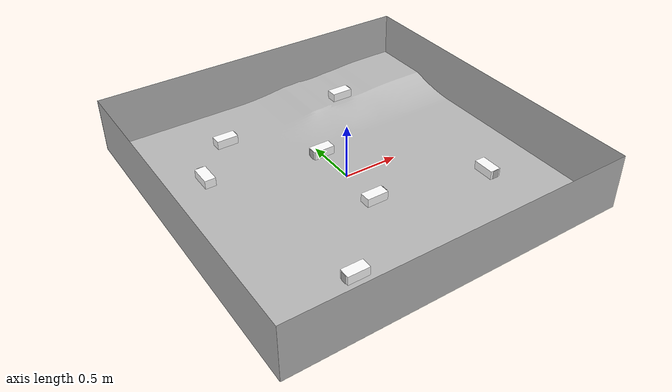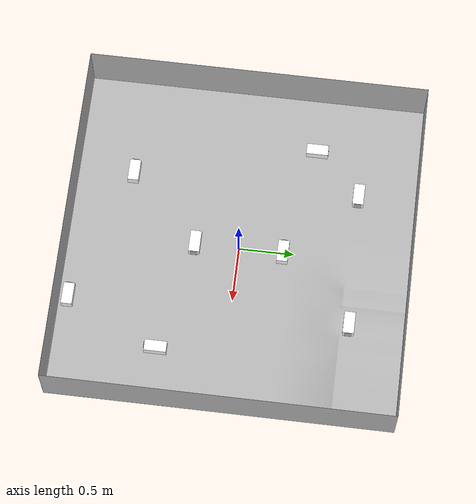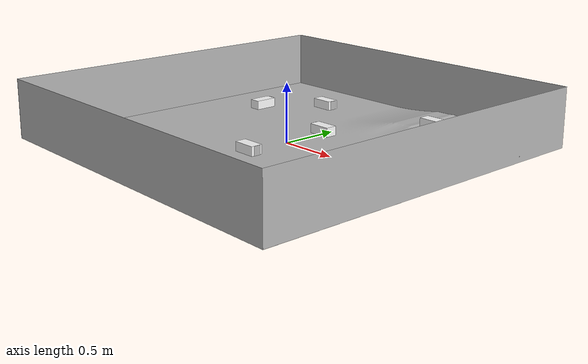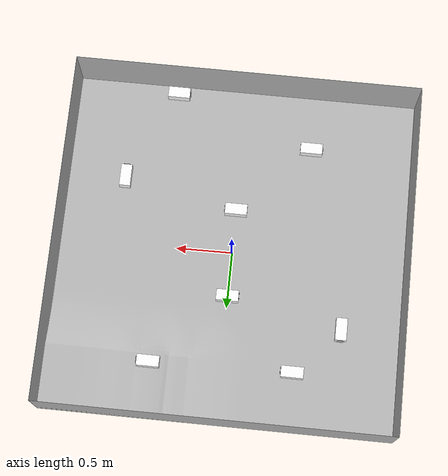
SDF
<sdf version="1.4">
 <world name="default">
  <include><uri>model://full_town</uri></include>
  <include><uri>model://sun</uri></include>
  <scene><sky><time>12</time></sky><shadows>0</shadows></scene>
  <include>
   <uri>model://wall</uri>
   <name>north_wall</name>
   <pose>1.55 0 0.25 0 0 1.57</pose>
   <static>true</static>
  </include>
  <include>
   <uri>model://wall</uri>
   <name>south_wall</name>
   <pose>-1.55 0 0.25 0 0 1.57</pose>
   <static>true</static>
  </include>
  <include>
   <uri>model://wall</uri>
   <name>east_wall</name>
   <pose>0 -1.55 0.25 0 0 0</pose>
   <static>true</static>
  </include>
  <include>
   <uri>model://wall</uri>
   <name>west_wall</name>
   <pose>0 1.55 0.25 0 0 0</pose>
   <static>true</static>
  </include>
  <include><uri>model://car0</uri><static>true</static><pose>-0.631 -1.041 0.04 0.0 0.0 1.57</pose></include>
  <include><uri>model://car1</uri><static>true</static><pose>0.631 -1.467 0.04 0.0 0.0 1.57</pose></include>
  <include><uri>model://car2</uri><static>true</static><pose>1.03 -0.623 0.04 0.0 0.0 3.14</pose></include>
  <include><uri>model://car3</uri><static>true</static><pose>0.631 1.059 0.1 0.0 0.0 4.71</pose></include>
  <include><uri>model://car4</uri><static>true</static><pose>-0.631 1.027 0.04 0.0 0.0 4.71</pose></include>
  <include><uri>model://car5</uri><static>true</static><pose>-1.03 0.607 0.04 0.0 0.0 0.0</pose></include>
  <include><uri>model://car6</uri><static>true</static><pose>0.0 0.4 0.04 0.0 0.0 1.57</pose></include>
  <include><uri>model://car7</uri><static>true</static><pose>0.0 -0.4 0.04 0.0 0.0 -1.57</pose></include>
  <include><uri>model://car_muscle</uri><static>true</static><pose>1.5 1 0.0 0.0 0.0 0.0</pose></include>
  <physics type="ode">
   <max_step_size>0.001</max_step_size>
   <real_time_factor>10.0</real_time_factor>
   <real_time_update_rate>1000.0</real_time_update_rate>
  </physics>
  <plugin name="B1_collision_plugin" filename="libcollision_plugin.so">
   <pubPeriod>2</pubPeriod>
   <pubTopic>B1_Hit</pubTopic>
   <collisionObject1>B1</collisionObject1>
  </plugin>
  <plugin name="R1_collision_plugin" filename="libcollision_plugin.so">
   <pubPeriod>2</pubPeriod>
   <pubTopic>R1_Hit</pubTopic>
   <collisionObject1>R1</collisionObject1>
  </plugin>
 </world>
</sdf>

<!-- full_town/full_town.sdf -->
<sdf version="1.4">
<model name="full_town">
  <static>true</static>
    <link name="link">
      <collision name="collision">
        <pose>0 0 0 0 0 -1.57</pose>
        <geometry>
          <mesh>
            <uri>model://full_town/meshes/Terrain_2.dae</uri>
            <scale>0.50 0.50 0.50</scale>
            <normal>0 0 1</normal>
          </mesh>
        </geometry>
        <surface>
          <friction>
            <ode>
              <mu>100</mu>
              <mu2>100</mu2>
            </ode>
          </friction>
        </surface>
      </collision>
      <visual name="visual">
        <pose>0 0 0 0 0 -1.57</pose>
        <cast_shadows>false</cast_shadows>
        <geometry>
          <mesh>
            <uri>model://full_town/meshes/Terrain_2.dae</uri>
            <scale>0.50 0.50 0.50</scale>
            <normal>0 0 1</normal>
          </mesh>
        </geometry>
        <material>
          <script>
            <uri>file://materials/scripts</uri>
            <uri>file://materials/textures</uri>
            <name>full_town</name>
          </script>
        </material>
      </visual>
    </link>
  </model>
</sdf>

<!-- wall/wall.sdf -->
<sdf version='1.4'>
  <model name="wall">
  <link name='wall'>
    <pose>0 0 0 0 0 0</pose>
    <inertial>
      <inertia>
        <ixx>1e-6</ixx>
        <ixy>0</ixy>
        <ixz>0</ixz>
        <iyy>1e-6</iyy>
        <iyz>0</iyz>
        <izz>1e-6</izz>
      </inertia>
      <mass>1e-6</mass>
    </inertial>
    <collision name='collision'>
      <pose>0 0 0 0 0 0</pose>
      <geometry>
        <box>
          <size>3.1 1e-6 0.5</size>
        </box>
      </geometry>
    </collision>
    <visual name='visual'>
      <geometry>
        <box>
          <size>3.1 1e-6 0.5</size>
        </box>
      </geometry>
      <material>
      <script>
        <uri>file://materials/scripts</uri>
        <uri>file://materials/textures</uri>
        <name>wall</name>
      </script>
      </material>
    </visual>
  </link>
</model>
</sdf>

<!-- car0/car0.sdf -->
<sdf version='1.4'>
  <model name="car0">
  <link name='car_body'>
    <pose>0 0 0 0 0 0</pose>
    <inertial>
      <inertia>
        <ixx>1e6</ixx>
        <ixy>0</ixy>
        <ixz>0</ixz>
        <iyy>1e6</iyy>
        <iyz>0</iyz>
        <izz>1e6</izz>
      </inertia>
      <mass>1e6</mass>
    </inertial>
    <collision name='collision'>
      <pose>0 0 0.04 0 0 0</pose>
      <geometry>
        <box>
          <size>0.1 0.2 0.08</size>
        </box>
      </geometry>
    </collision>
    <visual name='visual'>
      <geometry>
        <box>
          <size>0.1 0.2 0.08</size>
        </box>
      </geometry>
        <material>
          <ambient>0 0 1 1</ambient>
          <diffuse>1 1 1 1</diffuse>
          <specular>0 0.5 0 0</specular>
          <emissive>0 0 0 1</emissive>
        </material>
    </visual>
  </link>
  <link name='plate'>
    <pose>0 0.105 0 0 0 0</pose>
    <inertial>
      <inertia>
        <ixx>1e6</ixx>
        <ixy>0</ixy>
        <ixz>0</ixz>
        <iyy>1e6</iyy>
        <iyz>0</iyz>
        <izz>1e6</izz>
      </inertia>
      <mass>1e6</mass>
    </inertial>
    <collision name='collision'>
      <pose>0 0 -2e6 0 0 0</pose>
      <geometry>
        <box>
          <size>1e-6 1e-6 1e-6</size>
        </box>
      </geometry>
    </collision>
    <visual name='visual'>
      <geometry>
        <box>
          <size>0.06 1e-4 0.08</size>
        </box>
      </geometry>
      <material>
        <script>
          <uri>file://materials/scripts</uri>
          <uri>file://materials/textures</uri>
          <name>car0</name>
        </script>
      </material>
    </visual>
  </link>
</model>
</sdf>

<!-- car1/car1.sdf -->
<sdf version='1.4'>
  <model name="car1">
  <link name='car_body'>
    <pose>0 0 0 0 0 0</pose>
    <inertial>
      <inertia>
        <ixx>1e6</ixx>
        <ixy>0</ixy>
        <ixz>0</ixz>
        <iyy>1e6</iyy>
        <iyz>0</iyz>
        <izz>1e6</izz>
      </inertia>
      <mass>1e6</mass>
    </inertial>
    <collision name='collision'>
      <pose>0 0 0.04 0 0 0</pose>
      <geometry>
        <box>
          <size>0.1 0.2 0.08</size>
        </box>
      </geometry>
    </collision>
    <visual name='visual'>
      <geometry>
        <box>
          <size>0.1 0.2 0.08</size>
        </box>
      </geometry>
        <material>
          <ambient>0 0 1 1</ambient>
          <diffuse>1 1 1 1</diffuse>
          <specular>0 0.5 0 0</specular>
          <emissive>0 0 0 1</emissive>
        </material>
    </visual>
  </link>
  <link name='plate'>
    <pose>0 0.105 0 0 0 0</pose>
    <inertial>
      <inertia>
        <ixx>1e6</ixx>
        <ixy>0</ixy>
        <ixz>0</ixz>
        <iyy>1e6</iyy>
        <iyz>0</iyz>
        <izz>1e6</izz>
      </inertia>
      <mass>1e6</mass>
    </inertial>
    <collision name='collision'>
      <pose>0 0 -2e6 0 0 0</pose>
      <geometry>
        <box>
          <size>1e-6 1e-6 1e-6</size>
        </box>
      </geometry>
    </collision>
    <visual name='visual'>
      <geometry>
        <box>
          <size>0.06 1e-4 0.08</size>
        </box>
      </geometry>
      <material>
        <script>
          <uri>file://materials/scripts</uri>
          <uri>file://materials/textures</uri>
          <name>car1</name>
        </script>
      </material>
    </visual>
  </link>
</model>
</sdf>

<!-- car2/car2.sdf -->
<sdf version='1.4'>
  <model name="car2">
  <link name='car_body'>
    <pose>0 0 0 0 0 0</pose>
    <inertial>
      <inertia>
        <ixx>1e6</ixx>
        <ixy>0</ixy>
        <ixz>0</ixz>
        <iyy>1e6</iyy>
        <iyz>0</iyz>
        <izz>1e6</izz>
      </inertia>
      <mass>1e6</mass>
    </inertial>
    <collision name='collision'>
      <pose>0 0 0.04 0 0 0</pose>
      <geometry>
        <box>
          <size>0.1 0.2 0.08</size>
        </box>
      </geometry>
    </collision>
    <visual name='visual'>
      <geometry>
        <box>
          <size>0.1 0.2 0.08</size>
        </box>
      </geometry>
        <material>
          <ambient>0 0 1 1</ambient>
          <diffuse>1 1 1 1</diffuse>
          <specular>0 0.5 0 0</specular>
          <emissive>0 0 0 1</emissive>
        </material>
    </visual>
  </link>
  <link name='plate'>
    <pose>0 0.105 0 0 0 0</pose>R
    <inertial>
      <inertia>
        <ixx>1e6</ixx>
        <ixy>0</ixy>
        <ixz>0</ixz>
        <iyy>1e6</iyy>
        <iyz>0</iyz>
        <izz>1e6</izz>
      </inertia>
      <mass>1e6</mass>
    </inertial>
    <collision name='collision'>
      <pose>0 0 -2e6 0 0 0</pose>
      <geometry>
        <box>
          <size>1e-6 1e-6 1e-6</size>
        </box>
      </geometry>
    </collision>
    <visual name='visual'>
      <geometry>
        <box>
          <size>0.06 1e-4 0.08</size>
        </box>
      </geometry>
      <material>
        <script>
          <uri>file://materials/scripts</uri>
          <uri>file://materials/textures</uri>
          <name>car2</name>
        </script>
      </material>
    </visual>
  </link>
</model>
</sdf>

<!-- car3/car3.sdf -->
<sdf version='1.4'>
  <model name="car3">
  <link name='car_body'>
    <pose>0 0 0 0 0 0</pose>
    <inertial>
      <inertia>
        <ixx>1e6</ixx>
        <ixy>0</ixy>
        <ixz>0</ixz>
        <iyy>1e6</iyy>
        <iyz>0</iyz>
        <izz>1e6</izz>
      </inertia>
      <mass>1e6</mass>
    </inertial>
    <collision name='collision'>
      <pose>0 0 0.04 0 0 0</pose>
      <geometry>
        <box>
          <size>0.1 0.2 0.08</size>
        </box>
      </geometry>
    </collision>
    <visual name='visual'>
      <geometry>
        <box>
          <size>0.1 0.2 0.08</size>
        </box>
      </geometry>
        <material>
          <ambient>0 0 1 1</ambient>
          <diffuse>1 1 1 1</diffuse>
          <specular>0 0.5 0 0</specular>
          <emissive>0 0 0 1</emissive>
        </material>
    </visual>
  </link>
  <link name='plate'>
    <pose>0 0.105 0 0 0 0</pose>
    <inertial>
      <inertia>
        <ixx>1e6</ixx>
        <ixy>0</ixy>
        <ixz>0</ixz>
        <iyy>1e6</iyy>
        <iyz>0</iyz>
        <izz>1e6</izz>
      </inertia>
      <mass>1e6</mass>
    </inertial>
    <collision name='collision'>
      <pose>0 0 -2e6 0 0 0</pose>
      <geometry>
        <box>
          <size>1e-6 1e-6 1e-6</size>
        </box>
      </geometry>
    </collision>
    <visual name='visual'>
      <geometry>
        <box>
          <size>0.06 1e-4 0.08</size>
        </box>
      </geometry>
      <material>
        <script>
          <uri>file://materials/scripts</uri>
          <uri>file://materials/textures</uri>
          <name>car3</name>
        </script>
      </material>
    </visual>
  </link>
</model>
</sdf>

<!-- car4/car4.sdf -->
<sdf version='1.4'>
  <model name="car4">
  <link name='car_body'>
    <pose>0 0 0 0 0 0</pose>
    <inertial>
      <inertia>
        <ixx>1e6</ixx>
        <ixy>0</ixy>
        <ixz>0</ixz>
        <iyy>1e6</iyy>
        <iyz>0</iyz>
        <izz>1e6</izz>
      </inertia>
      <mass>1e6</mass>
    </inertial>
    <collision name='collision'>
      <pose>0 0 0.04 0 0 0</pose>
      <geometry>
        <box>
          <size>0.1 0.2 0.08</size>
        </box>
      </geometry>
    </collision>
    <visual name='visual'>
      <geometry>
        <box>
          <size>0.1 0.2 0.08</size>
        </box>
      </geometry>
        <material>
          <ambient>0 0 1 1</ambient>
          <diffuse>1 1 1 1</diffuse>
          <specular>0 0.5 0 0</specular>
          <emissive>0 0 0 1</emissive>
        </material>
    </visual>
  </link>
  <link name='plate'>
    <pose>0 0.105 0 0 0 0</pose>
    <inertial>
      <inertia>
        <ixx>1e6</ixx>
        <ixy>0</ixy>
        <ixz>0</ixz>
        <iyy>1e6</iyy>
        <iyz>0</iyz>
        <izz>1e6</izz>
      </inertia>
      <mass>1e6</mass>
    </inertial>
    <collision name='collision'>
      <pose>0 0 -2e6 0 0 0</pose>
      <geometry>
        <box>
          <size>1e-6 1e-6 1e-6</size>
        </box>
      </geometry>
    </collision>
    <visual name='visual'>
      <geometry>
        <box>
          <size>0.06 1e-4 0.08</size>
        </box>
      </geometry>
      <material>
        <script>
          <uri>file://materials/scripts</uri>
          <uri>file://materials/textures</uri>
          <name>car4</name>
        </script>
      </material>
    </visual>
  </link>
</model>
</sdf>

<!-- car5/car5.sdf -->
<sdf version='1.4'>
  <model name="car5">
  <link name='car_body'>
    <pose>0 0 0 0 0 0</pose>
    <inertial>
      <inertia>
        <ixx>1e6</ixx>
        <ixy>0</ixy>
        <ixz>0</ixz>
        <iyy>1e6</iyy>
        <iyz>0</iyz>
        <izz>1e6</izz>
      </inertia>
      <mass>1e6</mass>
    </inertial>
    <collision name='collision'>
      <pose>0 0 0.04 0 0 0</pose>
      <geometry>
        <box>
          <size>0.1 0.2 0.08</size>
        </box>
      </geometry>
    </collision>
    <visual name='visual'>
      <geometry>
        <box>
          <size>0.1 0.2 0.08</size>
        </box>
      </geometry>
        <material>
          <ambient>0 0 1 1</ambient>
          <diffuse>1 1 1 1</diffuse>
          <specular>0 0.5 0 0</specular>
          <emissive>0 0 0 1</emissive>
        </material>
    </visual>
  </link>
  <link name='plate'>
    <pose>0 0.105 0 0 0 0</pose>
    <inertial>
      <inertia>
        <ixx>1e6</ixx>
        <ixy>0</ixy>
        <ixz>0</ixz>
        <iyy>1e6</iyy>
        <iyz>0</iyz>
        <izz>1e6</izz>
      </inertia>
      <mass>1e6</mass>
    </inertial>
    <collision name='collision'>
      <pose>0 0 -2e6 0 0 0</pose>
      <geometry>
        <box>
          <size>1e-6 1e-6 1e-6</size>
        </box>
      </geometry>
    </collision>
    <visual name='visual'>
      <geometry>
        <box>
          <size>0.06 1e-4 0.08</size>
        </box>
      </geometry>
      <material>
        <script>
          <uri>file://materials/scripts</uri>
          <uri>file://materials/textures</uri>
          <name>car5</name>
        </script>
      </material>
    </visual>
  </link>
</model>
</sdf>

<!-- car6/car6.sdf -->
<sdf version='1.4'>
  <model name="car6">
  <link name='car_body'>
    <pose>0 0 0 0 0 0</pose>
    <inertial>
      <inertia>
        <ixx>1e6</ixx>
        <ixy>0</ixy>
        <ixz>0</ixz>
        <iyy>1e6</iyy>
        <iyz>0</iyz>
        <izz>1e6</izz>
      </inertia>
      <mass>1e6</mass>
    </inertial>
    <collision name='collision'>
      <pose>0 0 0.04 0 0 0</pose>
      <geometry>
        <box>
          <size>0.1 0.2 0.08</size>
        </box>
      </geometry>
    </collision>
    <visual name='visual'>
      <geometry>
        <box>
          <size>0.1 0.2 0.08</size>
        </box>
      </geometry>
        <material>
          <ambient>0 0 1 1</ambient>
          <diffuse>1 1 1 1</diffuse>
          <specular>0 0.5 0 0</specular>
          <emissive>0 0 0 1</emissive>
        </material>
    </visual>
  </link>
  <link name='plate'>
    <pose>0 0.105 0 0 0 0</pose>
    <inertial>
      <inertia>
        <ixx>1e6</ixx>
        <ixy>0</ixy>
        <ixz>0</ixz>
        <iyy>1e6</iyy>
        <iyz>0</iyz>
        <izz>1e6</izz>
      </inertia>
      <mass>1e6</mass>
    </inertial>
    <collision name='collision'>
      <pose>0 0 -2e6 0 0 0</pose>
      <geometry>
        <box>
          <size>1e-6 1e-6 1e-6</size>
        </box>
      </geometry>
    </collision>
    <visual name='visual'>
      <geometry>
        <box>
          <size>0.06 1e-4 0.08</size>
        </box>
      </geometry>
      <material>
        <script>
          <uri>file://materials/scripts</uri>
          <uri>file://materials/textures</uri>
          <name>car6</name>
        </script>
      </material>
    </visual>
  </link>
</model>
</sdf>

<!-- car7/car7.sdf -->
<sdf version='1.4'>
  <model name="car7">
  <link name='car_body'>
    <pose>0 0 0 0 0 0</pose>
    <inertial>
      <inertia>
        <ixx>1e6</ixx>
        <ixy>0</ixy>
        <ixz>0</ixz>
        <iyy>1e6</iyy>
        <iyz>0</iyz>
        <izz>1e6</izz>
      </inertia>
      <mass>1e6</mass>
    </inertial>
    <collision name='collision'>
      <pose>0 0 0.04 0 0 0</pose>
      <geometry>
        <box>
          <size>0.1 0.2 0.08</size>
        </box>
      </geometry>
    </collision>
    <visual name='visual'>
      <geometry>
        <box>
          <size>0.1 0.2 0.08</size>
        </box>
      </geometry>
        <material>
          <ambient>0 0 1 1</ambient>
          <diffuse>1 1 1 1</diffuse>
          <specular>0 0.5 0 0</specular>
          <emissive>0 0 0 1</emissive>
        </material>
    </visual>
  </link>
  <link name='plate'>
    <pose>0 0.105 0 0 0 0</pose>
    <inertial>
      <inertia>
        <ixx>1e6</ixx>
        <ixy>0</ixy>
        <ixz>0</ixz>
        <iyy>1e6</iyy>
        <iyz>0</iyz>
        <izz>1e6</izz>
      </inertia>
      <mass>1e6</mass>
    </inertial>
    <collision name='collision'>
      <pose>0 0 -2e6 0 0 0</pose>
      <geometry>
        <box>
          <size>1e-6 1e-6 1e-6</size>
        </box>
      </geometry>
    </collision>
    <visual name='visual'>
      <geometry>
        <box>
          <size>0.06 1e-4 0.08</size>
        </box>
      </geometry>
      <material>
        <script>
          <uri>file://materials/scripts</uri>
          <uri>file://materials/textures</uri>
          <name>car7</name>
        </script>
      </material>
    </visual>
  </link>
</model>
</sdf>

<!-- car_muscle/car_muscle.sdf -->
<sdf version='1.4'>
  <model name="car_muscle">
      <static>0</static>
      <link name="link">
        <inertial>
          <pose>0 0 0 0 0 0</pose>
          <mass>1.0</mass>
          <inertia>
            <ixx>0.0385483333333</ixx>
            <ixy>000000</ixy>
            <ixz>0.000000</ixz>
            <iyy>0.107087533333</iyy>
            <iyz>0.000000</iyz>
            <izz>0.1243542</izz>
          </inertia>
        </inertial>
        <collision name="collision">
          <pose>0 0 0 0 0 0</pose>
          <geometry>
            <mesh>
                <uri>model://car_muscle/meshes/car_muscle.dae</uri>
                <scale>0.01 0.01 0.01</scale>
            </mesh>
          </geometry>
        </collision>
        <visual name="visual">
          <pose>0 0 0 0 0 0</pose>
          <geometry>
            <mesh>
                <uri>model://car_muscle/meshes/car_muscle.dae</uri>
                <scale>0.05 0.05 0.05</scale>
            </mesh>
          </geometry>
        </visual>
      </link>
    </model>
</sdf>
